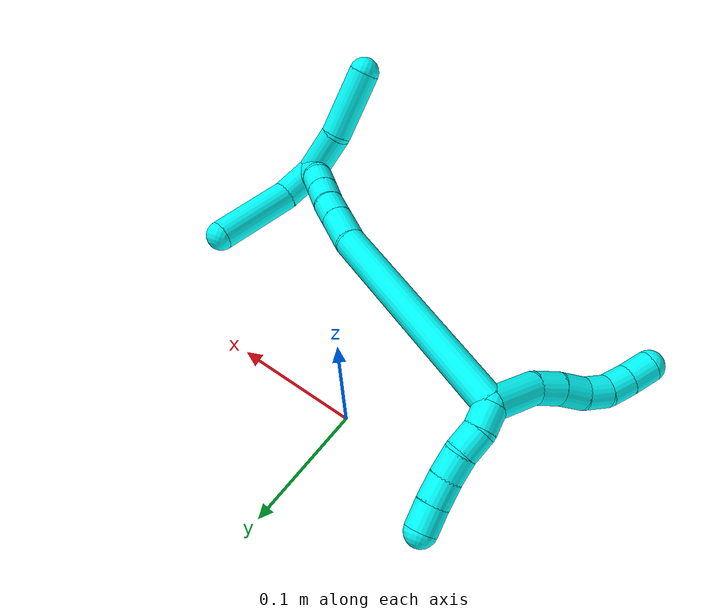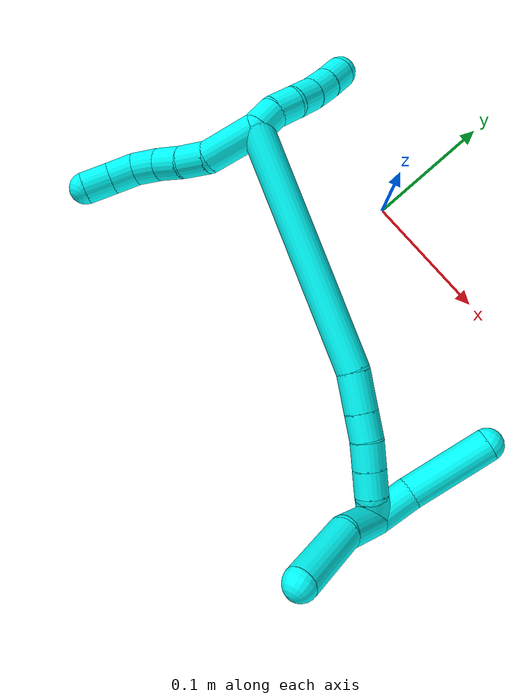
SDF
<sdf version="1.7">
 <world name="default">
  <model name="3">
   <static>0</static>
   <link name="3">
    <collision name="collision-cylinder-e_1_2_8">
     <pose>-0.014561 -0.009411 0.012507 0.645092 -0.749287 -0.261341</pose>
     <geometry><cylinder><radius>0.0125</radius><length>0.042755</length></cylinder></geometry>
     <surface>
      <friction><ode><mu>1.16</mu><mu2>1.16</mu2><slip1>0</slip1><slip2>0</slip2></ode></friction>
      <contact><ode><kp>1e+06</kp><kd>1</kd><max_vel>0</max_vel><min_depth>0.001</min_depth></ode></contact>
     </surface>
    </collision>
    <visual name="visual-cylinder-e_1_2_8">
     <pose>-0.014561 -0.009411 0.012507 0.645092 -0.749287 -0.261341</pose>
     <geometry><cylinder><radius>0.0125</radius><length>0.042755</length></cylinder></geometry>
     <material><ambient>0.003922 1 0.996078 1</ambient></material>
    </visual>
    <collision name="collision-cylinder-e_2_8_9">
     <pose>-0.039192 -0.022304 0.028936 0.725922 -1.09066 -0.452929</pose>
     <geometry><cylinder><radius>0.0125</radius><length>0.022709</length></cylinder></geometry>
     <surface>
      <friction><ode><mu>1.16</mu><mu2>1.16</mu2><slip1>0</slip1><slip2>0</slip2></ode></friction>
      <contact><ode><kp>1e+06</kp><kd>1</kd><max_vel>0</max_vel><min_depth>0.001</min_depth></ode></contact>
     </surface>
    </collision>
    <visual name="visual-cylinder-e_2_8_9">
     <pose>-0.039192 -0.022304 0.028936 0.725922 -1.09066 -0.452929</pose>
     <geometry><cylinder><radius>0.0125</radius><length>0.022709</length></cylinder></geometry>
     <material><ambient>0.003922 1 0.996078 1</ambient></material>
    </visual>
    <collision name="collision-cylinder-e_3_9_10">
     <pose>-0.05949 -0.029193 0.035192 0.970373 -1.18697 -0.683436</pose>
     <geometry><cylinder><radius>0.0125</radius><length>0.02206</length></cylinder></geometry>
     <surface>
      <friction><ode><mu>1.16</mu><mu2>1.16</mu2><slip1>0</slip1><slip2>0</slip2></ode></friction>
      <contact><ode><kp>1e+06</kp><kd>1</kd><max_vel>0</max_vel><min_depth>0.001</min_depth></ode></contact>
     </surface>
    </collision>
    <visual name="visual-cylinder-e_3_9_10">
     <pose>-0.05949 -0.029193 0.035192 0.970373 -1.18697 -0.683436</pose>
     <geometry><cylinder><radius>0.0125</radius><length>0.02206</length></cylinder></geometry>
     <material><ambient>0.003922 1 0.996078 1</ambient></material>
    </visual>
    <collision name="collision-cylinder-e_4_10_11">
     <pose>-0.078495 -0.034811 0.042131 0.447297 -1.04372 -0.26011</pose>
     <geometry><cylinder><radius>0.0125</radius><length>0.020311</length></cylinder></geometry>
     <surface>
      <friction><ode><mu>1.16</mu><mu2>1.16</mu2><slip1>0</slip1><slip2>0</slip2></ode></friction>
      <contact><ode><kp>1e+06</kp><kd>1</kd><max_vel>0</max_vel><min_depth>0.001</min_depth></ode></contact>
     </surface>
    </collision>
    <visual name="visual-cylinder-e_4_10_11">
     <pose>-0.078495 -0.034811 0.042131 0.447297 -1.04372 -0.26011</pose>
     <geometry><cylinder><radius>0.0125</radius><length>0.020311</length></cylinder></geometry>
     <material><ambient>0.003922 1 0.996078 1</ambient></material>
    </visual>
    <collision name="collision-cylinder-e_5_11_12">
     <pose>-0.094052 -0.038672 0.054045 0.22224 -0.735543 -0.085931</pose>
     <geometry><cylinder><radius>0.0125</radius><length>0.020209</length></cylinder></geometry>
     <surface>
      <friction><ode><mu>1.16</mu><mu2>1.16</mu2><slip1>0</slip1><slip2>0</slip2></ode></friction>
      <contact><ode><kp>1e+06</kp><kd>1</kd><max_vel>0</max_vel><min_depth>0.001</min_depth></ode></contact>
     </surface>
    </collision>
    <visual name="visual-cylinder-e_5_11_12">
     <pose>-0.094052 -0.038672 0.054045 0.22224 -0.735543 -0.085931</pose>
     <geometry><cylinder><radius>0.0125</radius><length>0.020209</length></cylinder></geometry>
     <material><ambient>0.003922 1 0.996078 1</ambient></material>
    </visual>
    <collision name="collision-cylinder-e_6_12_6">
     <pose>-0.10766 -0.041332 0.06989 0.117614 -0.671259 -0.041069</pose>
     <geometry><cylinder><radius>0.0125</radius><length>0.021956</length></cylinder></geometry>
     <surface>
      <friction><ode><mu>1.16</mu><mu2>1.16</mu2><slip1>0</slip1><slip2>0</slip2></ode></friction>
      <contact><ode><kp>1e+06</kp><kd>1</kd><max_vel>0</max_vel><min_depth>0.001</min_depth></ode></contact>
     </surface>
    </collision>
    <visual name="visual-cylinder-e_6_12_6">
     <pose>-0.10766 -0.041332 0.06989 0.117614 -0.671259 -0.041069</pose>
     <geometry><cylinder><radius>0.0125</radius><length>0.021956</length></cylinder></geometry>
     <material><ambient>0.003922 1 0.996078 1</ambient></material>
    </visual>
    <collision name="collision-cylinder-e_1_2_13">
     <pose>0.000794 0.000596 -0.009951 -3.08173 0.079448 -1.85035</pose>
     <geometry><cylinder><radius>0.0125</radius><length>0.02</length></cylinder></geometry>
     <surface>
      <friction><ode><mu>1.16</mu><mu2>1.16</mu2><slip1>0</slip1><slip2>0</slip2></ode></friction>
      <contact><ode><kp>1e+06</kp><kd>1</kd><max_vel>0</max_vel><min_depth>0.001</min_depth></ode></contact>
     </surface>
    </collision>
    <visual name="visual-cylinder-e_1_2_13">
     <pose>0.000794 0.000596 -0.009951 -3.08173 0.079448 -1.85035</pose>
     <geometry><cylinder><radius>0.0125</radius><length>0.02</length></cylinder></geometry>
     <material><ambient>0.003922 1 0.996078 1</ambient></material>
    </visual>
    <collision name="collision-cylinder-e_2_13_14">
     <pose>0.004767 0.000102 -0.029319 3.02626 0.323578 2.46166</pose>
     <geometry><cylinder><radius>0.0125</radius><length>0.02</length></cylinder></geometry>
     <surface>
      <friction><ode><mu>1.16</mu><mu2>1.16</mu2><slip1>0</slip1><slip2>0</slip2></ode></friction>
      <contact><ode><kp>1e+06</kp><kd>1</kd><max_vel>0</max_vel><min_depth>0.001</min_depth></ode></contact>
     </surface>
    </collision>
    <visual name="visual-cylinder-e_2_13_14">
     <pose>0.004767 0.000102 -0.029319 3.02626 0.323578 2.46166</pose>
     <geometry><cylinder><radius>0.0125</radius><length>0.02</length></cylinder></geometry>
     <material><ambient>0.003922 1 0.996078 1</ambient></material>
    </visual>
    <collision name="collision-cylinder-e_3_14_15">
     <pose>0.009224 -0.003564 -0.048315 2.87899 0.128058 0.903974</pose>
     <geometry><cylinder><radius>0.0125</radius><length>0.02</length></cylinder></geometry>
     <surface>
      <friction><ode><mu>1.16</mu><mu2>1.16</mu2><slip1>0</slip1><slip2>0</slip2></ode></friction>
      <contact><ode><kp>1e+06</kp><kd>1</kd><max_vel>0</max_vel><min_depth>0.001</min_depth></ode></contact>
     </surface>
    </collision>
    <visual name="visual-cylinder-e_3_14_15">
     <pose>0.009224 -0.003564 -0.048315 2.87899 0.128058 0.903974</pose>
     <geometry><cylinder><radius>0.0125</radius><length>0.02</length></cylinder></geometry>
     <material><ambient>0.003922 1 0.996078 1</ambient></material>
    </visual>
    <collision name="collision-cylinder-e_4_15_16">
     <pose>0.011246 -0.007825 -0.067722 2.97164 0.074553 0.825331</pose>
     <geometry><cylinder><radius>0.0125</radius><length>0.02</length></cylinder></geometry>
     <surface>
      <friction><ode><mu>1.16</mu><mu2>1.16</mu2><slip1>0</slip1><slip2>0</slip2></ode></friction>
      <contact><ode><kp>1e+06</kp><kd>1</kd><max_vel>0</max_vel><min_depth>0.001</min_depth></ode></contact>
     </surface>
    </collision>
    <visual name="visual-cylinder-e_4_15_16">
     <pose>0.011246 -0.007825 -0.067722 2.97164 0.074553 0.825331</pose>
     <geometry><cylinder><radius>0.0125</radius><length>0.02</length></cylinder></geometry>
     <material><ambient>0.003922 1 0.996078 1</ambient></material>
    </visual>
    <collision name="collision-cylinder-e_5_16_5">
     <pose>0.012237 -0.010894 -0.087452 3.00296 0.024637 0.351231</pose>
     <geometry><cylinder><radius>0.0125</radius><length>0.02</length></cylinder></geometry>
     <surface>
      <friction><ode><mu>1.16</mu><mu2>1.16</mu2><slip1>0</slip1><slip2>0</slip2></ode></friction>
      <contact><ode><kp>1e+06</kp><kd>1</kd><max_vel>0</max_vel><min_depth>0.001</min_depth></ode></contact>
     </surface>
    </collision>
    <visual name="visual-cylinder-e_5_16_5">
     <pose>0.012237 -0.010894 -0.087452 3.00296 0.024637 0.351231</pose>
     <geometry><cylinder><radius>0.0125</radius><length>0.02</length></cylinder></geometry>
     <material><ambient>0.003922 1 0.996078 1</ambient></material>
    </visual>
    <collision name="collision-cylinder-e_1_2_17">
     <pose>0.064008 -0.05308 0.044708 0.870802 0.745004 0.359603</pose>
     <geometry><cylinder><radius>0.0125</radius><length>0.18882</length></cylinder></geometry>
     <surface>
      <friction><ode><mu>1.16</mu><mu2>1.16</mu2><slip1>0</slip1><slip2>0</slip2></ode></friction>
      <contact><ode><kp>1e+06</kp><kd>1</kd><max_vel>0</max_vel><min_depth>0.001</min_depth></ode></contact>
     </surface>
    </collision>
    <visual name="visual-cylinder-e_1_2_17">
     <pose>0.064008 -0.05308 0.044708 0.870802 0.745004 0.359603</pose>
     <geometry><cylinder><radius>0.0125</radius><length>0.18882</length></cylinder></geometry>
     <material><ambient>0.003922 1 0.996078 1</ambient></material>
    </visual>
    <collision name="collision-cylinder-e_2_17_18">
     <pose>0.135899 -0.115327 0.097977 0.819608 0.561135 0.249064</pose>
     <geometry><cylinder><radius>0.0125</radius><length>0.029631</length></cylinder></geometry>
     <surface>
      <friction><ode><mu>1.16</mu><mu2>1.16</mu2><slip1>0</slip1><slip2>0</slip2></ode></friction>
      <contact><ode><kp>1e+06</kp><kd>1</kd><max_vel>0</max_vel><min_depth>0.001</min_depth></ode></contact>
     </surface>
    </collision>
    <visual name="visual-cylinder-e_2_17_18">
     <pose>0.135899 -0.115327 0.097977 0.819608 0.561135 0.249064</pose>
     <geometry><cylinder><radius>0.0125</radius><length>0.029631</length></cylinder></geometry>
     <material><ambient>0.003922 1 0.996078 1</ambient></material>
    </visual>
    <collision name="collision-cylinder-e_3_18_19">
     <pose>0.149272 -0.13084 0.112449 0.820821 0.564301 0.250943</pose>
     <geometry><cylinder><radius>0.0125</radius><length>0.020525</length></cylinder></geometry>
     <surface>
      <friction><ode><mu>1.16</mu><mu2>1.16</mu2><slip1>0</slip1><slip2>0</slip2></ode></friction>
      <contact><ode><kp>1e+06</kp><kd>1</kd><max_vel>0</max_vel><min_depth>0.001</min_depth></ode></contact>
     </surface>
    </collision>
    <visual name="visual-cylinder-e_3_18_19">
     <pose>0.149272 -0.13084 0.112449 0.820821 0.564301 0.250943</pose>
     <geometry><cylinder><radius>0.0125</radius><length>0.020525</length></cylinder></geometry>
     <material><ambient>0.003922 1 0.996078 1</ambient></material>
    </visual>
    <collision name="collision-cylinder-e_4_19_20">
     <pose>0.159109 -0.144277 0.124601 0.84913 0.431337 0.197427</pose>
     <geometry><cylinder><radius>0.0125</radius><length>0.020801</length></cylinder></geometry>
     <surface>
      <friction><ode><mu>1.16</mu><mu2>1.16</mu2><slip1>0</slip1><slip2>0</slip2></ode></friction>
      <contact><ode><kp>1e+06</kp><kd>1</kd><max_vel>0</max_vel><min_depth>0.001</min_depth></ode></contact>
     </surface>
    </collision>
    <visual name="visual-cylinder-e_4_19_20">
     <pose>0.159109 -0.144277 0.124601 0.84913 0.431337 0.197427</pose>
     <geometry><cylinder><radius>0.0125</radius><length>0.020801</length></cylinder></geometry>
     <material><ambient>0.003922 1 0.996078 1</ambient></material>
    </visual>
    <collision name="collision-cylinder-e_5_20_21">
     <pose>0.167658 -0.158232 0.136874 0.849733 0.431022 0.197436</pose>
     <geometry><cylinder><radius>0.0125</radius><length>0.020112</length></cylinder></geometry>
     <surface>
      <friction><ode><mu>1.16</mu><mu2>1.16</mu2><slip1>0</slip1><slip2>0</slip2></ode></friction>
      <contact><ode><kp>1e+06</kp><kd>1</kd><max_vel>0</max_vel><min_depth>0.001</min_depth></ode></contact>
     </surface>
    </collision>
    <visual name="visual-cylinder-e_5_20_21">
     <pose>0.167658 -0.158232 0.136874 0.849733 0.431022 0.197436</pose>
     <geometry><cylinder><radius>0.0125</radius><length>0.020112</length></cylinder></geometry>
     <material><ambient>0.003922 1 0.996078 1</ambient></material>
    </visual>
    <collision name="collision-cylinder-e_6_21_1">
     <pose>0.174946 -0.174017 0.146367 1.20078 0.311935 0.214507</pose>
     <geometry><cylinder><radius>0.0125</radius><length>0.020112</length></cylinder></geometry>
     <surface>
      <friction><ode><mu>1.16</mu><mu2>1.16</mu2><slip1>0</slip1><slip2>0</slip2></ode></friction>
      <contact><ode><kp>1e+06</kp><kd>1</kd><max_vel>0</max_vel><min_depth>0.001</min_depth></ode></contact>
     </surface>
    </collision>
    <visual name="visual-cylinder-e_6_21_1">
     <pose>0.174946 -0.174017 0.146367 1.20078 0.311935 0.214507</pose>
     <geometry><cylinder><radius>0.0125</radius><length>0.020112</length></cylinder></geometry>
     <material><ambient>0.003922 1 0.996078 1</ambient></material>
    </visual>
    <collision name="collision-cylinder-e_1_1_22">
     <pose>0.184473 -0.182294 0.13516 -3.09758 0.413393 -2.93245</pose>
     <geometry><cylinder><radius>0.0125</radius><length>0.032065</length></cylinder></geometry>
     <surface>
      <friction><ode><mu>1.16</mu><mu2>1.16</mu2><slip1>0</slip1><slip2>0</slip2></ode></friction>
      <contact><ode><kp>1e+06</kp><kd>1</kd><max_vel>0</max_vel><min_depth>0.001</min_depth></ode></contact>
     </surface>
    </collision>
    <visual name="visual-cylinder-e_1_1_22">
     <pose>0.184473 -0.182294 0.13516 -3.09758 0.413393 -2.93245</pose>
     <geometry><cylinder><radius>0.0125</radius><length>0.032065</length></cylinder></geometry>
     <material><ambient>0.003922 1 0.996078 1</ambient></material>
    </visual>
    <collision name="collision-cylinder-e_2_22_4">
     <pose>0.208253 -0.173829 0.09235 -2.87057 0.535749 -2.21947</pose>
     <geometry><cylinder><radius>0.0125</radius><length>0.067935</length></cylinder></geometry>
     <surface>
      <friction><ode><mu>1.16</mu><mu2>1.16</mu2><slip1>0</slip1><slip2>0</slip2></ode></friction>
      <contact><ode><kp>1e+06</kp><kd>1</kd><max_vel>0</max_vel><min_depth>0.001</min_depth></ode></contact>
     </surface>
    </collision>
    <visual name="visual-cylinder-e_2_22_4">
     <pose>0.208253 -0.173829 0.09235 -2.87057 0.535749 -2.21947</pose>
     <geometry><cylinder><radius>0.0125</radius><length>0.067935</length></cylinder></geometry>
     <material><ambient>0.003922 1 0.996078 1</ambient></material>
    </visual>
    <collision name="collision-cylinder-e_1_1_23">
     <pose>0.174705 -0.168688 0.165163 -0.748798 -0.157604 0.062036</pose>
     <geometry><cylinder><radius>0.0125</radius><length>0.042398</length></cylinder></geometry>
     <surface>
      <friction><ode><mu>1.16</mu><mu2>1.16</mu2><slip1>0</slip1><slip2>0</slip2></ode></friction>
      <contact><ode><kp>1e+06</kp><kd>1</kd><max_vel>0</max_vel><min_depth>0.001</min_depth></ode></contact>
     </surface>
    </collision>
    <visual name="visual-cylinder-e_1_1_23">
     <pose>0.174705 -0.168688 0.165163 -0.748798 -0.157604 0.062036</pose>
     <geometry><cylinder><radius>0.0125</radius><length>0.042398</length></cylinder></geometry>
     <material><ambient>0.003922 1 0.996078 1</ambient></material>
    </visual>
    <collision name="collision-cylinder-e_2_23_3">
     <pose>0.170858 -0.141781 0.206366 -0.45498 -0.018025 0.004173</pose>
     <geometry><cylinder><radius>0.0125</radius><length>0.057602</length></cylinder></geometry>
     <surface>
      <friction><ode><mu>1.16</mu><mu2>1.16</mu2><slip1>0</slip1><slip2>0</slip2></ode></friction>
      <contact><ode><kp>1e+06</kp><kd>1</kd><max_vel>0</max_vel><min_depth>0.001</min_depth></ode></contact>
     </surface>
    </collision>
    <visual name="visual-cylinder-e_2_23_3">
     <pose>0.170858 -0.141781 0.206366 -0.45498 -0.018025 0.004173</pose>
     <geometry><cylinder><radius>0.0125</radius><length>0.057602</length></cylinder></geometry>
     <material><ambient>0.003922 1 0.996078 1</ambient></material>
    </visual>
    <collision name="collision-sphere-3">
     <pose>0.170339 -0.129126 0.232233 0 -0 0</pose>
     <geometry><sphere><radius>0.0125</radius></sphere></geometry>
     <surface>
      <friction><ode><mu>1.16</mu><mu2>1.16</mu2><slip1>0</slip1><slip2>0</slip2></ode></friction>
      <contact><ode><kp>1e+06</kp><kd>1</kd><max_vel>0</max_vel><min_depth>0.001</min_depth></ode></contact>
     </surface>
    </collision>
    <visual name="visual-sphere-3">
     <pose>0.170339 -0.129126 0.232233 0 -0 0</pose>
     <geometry><sphere><radius>0.0125</radius></sphere></geometry>
     <material><ambient>0.003922 1 0.996078 1</ambient></material>
    </visual>
    <collision name="collision-sphere-23">
     <pose>0.171378 -0.154435 0.180499 0 -0 0</pose>
     <geometry><sphere><radius>0.0125</radius></sphere></geometry>
     <surface>
      <friction><ode><mu>1.16</mu><mu2>1.16</mu2><slip1>0</slip1><slip2>0</slip2></ode></friction>
      <contact><ode><kp>1e+06</kp><kd>1</kd><max_vel>0</max_vel><min_depth>0.001</min_depth></ode></contact>
     </surface>
    </collision>
    <visual name="visual-sphere-23">
     <pose>0.171378 -0.154435 0.180499 0 -0 0</pose>
     <geometry><sphere><radius>0.0125</radius></sphere></geometry>
     <material><ambient>0.003922 1 0.996078 1</ambient></material>
    </visual>
    <collision name="collision-sphere-4">
     <pose>0.225593 -0.166009 0.064208 0 -0 0</pose>
     <geometry><sphere><radius>0.0125</radius></sphere></geometry>
     <surface>
      <friction><ode><mu>1.16</mu><mu2>1.16</mu2><slip1>0</slip1><slip2>0</slip2></ode></friction>
      <contact><ode><kp>1e+06</kp><kd>1</kd><max_vel>0</max_vel><min_depth>0.001</min_depth></ode></contact>
     </surface>
    </collision>
    <visual name="visual-sphere-4">
     <pose>0.225593 -0.166009 0.064208 0 -0 0</pose>
     <geometry><sphere><radius>0.0125</radius></sphere></geometry>
     <material><ambient>0.003922 1 0.996078 1</ambient></material>
    </visual>
    <collision name="collision-sphere-22">
     <pose>0.190913 -0.181648 0.120492 0 -0 0</pose>
     <geometry><sphere><radius>0.0125</radius></sphere></geometry>
     <surface>
      <friction><ode><mu>1.16</mu><mu2>1.16</mu2><slip1>0</slip1><slip2>0</slip2></ode></friction>
      <contact><ode><kp>1e+06</kp><kd>1</kd><max_vel>0</max_vel><min_depth>0.001</min_depth></ode></contact>
     </surface>
    </collision>
    <visual name="visual-sphere-22">
     <pose>0.190913 -0.181648 0.120492 0 -0 0</pose>
     <geometry><sphere><radius>0.0125</radius></sphere></geometry>
     <material><ambient>0.003922 1 0.996078 1</ambient></material>
    </visual>
    <collision name="collision-sphere-1">
     <pose>0.178032 -0.18294 0.149828 0 -0 0</pose>
     <geometry><sphere><radius>0.0125</radius></sphere></geometry>
     <surface>
      <friction><ode><mu>1.16</mu><mu2>1.16</mu2><slip1>0</slip1><slip2>0</slip2></ode></friction>
      <contact><ode><kp>1e+06</kp><kd>1</kd><max_vel>0</max_vel><min_depth>0.001</min_depth></ode></contact>
     </surface>
    </collision>
    <visual name="visual-sphere-1">
     <pose>0.178032 -0.18294 0.149828 0 -0 0</pose>
     <geometry><sphere><radius>0.0125</radius></sphere></geometry>
     <material><ambient>0.003922 1 0.996078 1</ambient></material>
    </visual>
    <collision name="collision-sphere-21">
     <pose>0.17186 -0.165094 0.142905 0 -0 0</pose>
     <geometry><sphere><radius>0.0125</radius></sphere></geometry>
     <surface>
      <friction><ode><mu>1.16</mu><mu2>1.16</mu2><slip1>0</slip1><slip2>0</slip2></ode></friction>
      <contact><ode><kp>1e+06</kp><kd>1</kd><max_vel>0</max_vel><min_depth>0.001</min_depth></ode></contact>
     </surface>
    </collision>
    <visual name="visual-sphere-21">
     <pose>0.17186 -0.165094 0.142905 0 -0 0</pose>
     <geometry><sphere><radius>0.0125</radius></sphere></geometry>
     <material><ambient>0.003922 1 0.996078 1</ambient></material>
    </visual>
    <collision name="collision-sphere-12">
     <pose>-0.100832 -0.040323 0.061353 0 -0 0</pose>
     <geometry><sphere><radius>0.0125</radius></sphere></geometry>
     <surface>
      <friction><ode><mu>1.16</mu><mu2>1.16</mu2><slip1>0</slip1><slip2>0</slip2></ode></friction>
      <contact><ode><kp>1e+06</kp><kd>1</kd><max_vel>0</max_vel><min_depth>0.001</min_depth></ode></contact>
     </surface>
    </collision>
    <visual name="visual-sphere-12">
     <pose>-0.100832 -0.040323 0.061353 0 -0 0</pose>
     <geometry><sphere><radius>0.0125</radius></sphere></geometry>
     <material><ambient>0.003922 1 0.996078 1</ambient></material>
    </visual>
    <collision name="collision-sphere-11">
     <pose>-0.087272 -0.03702 0.046737 0 -0 0</pose>
     <geometry><sphere><radius>0.0125</radius></sphere></geometry>
     <surface>
      <friction><ode><mu>1.16</mu><mu2>1.16</mu2><slip1>0</slip1><slip2>0</slip2></ode></friction>
      <contact><ode><kp>1e+06</kp><kd>1</kd><max_vel>0</max_vel><min_depth>0.001</min_depth></ode></contact>
     </surface>
    </collision>
    <visual name="visual-sphere-11">
     <pose>-0.087272 -0.03702 0.046737 0 -0 0</pose>
     <geometry><sphere><radius>0.0125</radius></sphere></geometry>
     <material><ambient>0.003922 1 0.996078 1</ambient></material>
    </visual>
    <collision name="collision-sphere-10">
     <pose>-0.069717 -0.032601 0.037525 0 -0 0</pose>
     <geometry><sphere><radius>0.0125</radius></sphere></geometry>
     <surface>
      <friction><ode><mu>1.16</mu><mu2>1.16</mu2><slip1>0</slip1><slip2>0</slip2></ode></friction>
      <contact><ode><kp>1e+06</kp><kd>1</kd><max_vel>0</max_vel><min_depth>0.001</min_depth></ode></contact>
     </surface>
    </collision>
    <visual name="visual-sphere-10">
     <pose>-0.069717 -0.032601 0.037525 0 -0 0</pose>
     <geometry><sphere><radius>0.0125</radius></sphere></geometry>
     <material><ambient>0.003922 1 0.996078 1</ambient></material>
    </visual>
    <collision name="collision-sphere-9">
     <pose>-0.049262 -0.025785 0.032858 0 -0 0</pose>
     <geometry><sphere><radius>0.0125</radius></sphere></geometry>
     <surface>
      <friction><ode><mu>1.16</mu><mu2>1.16</mu2><slip1>0</slip1><slip2>0</slip2></ode></friction>
      <contact><ode><kp>1e+06</kp><kd>1</kd><max_vel>0</max_vel><min_depth>0.001</min_depth></ode></contact>
     </surface>
    </collision>
    <visual name="visual-sphere-9">
     <pose>-0.049262 -0.025785 0.032858 0 -0 0</pose>
     <geometry><sphere><radius>0.0125</radius></sphere></geometry>
     <material><ambient>0.003922 1 0.996078 1</ambient></material>
    </visual>
    <collision name="collision-sphere-2">
     <geometry><sphere><radius>0.0125</radius></sphere></geometry>
     <surface>
      <friction><ode><mu>1.16</mu><mu2>1.16</mu2><slip1>0</slip1><slip2>0</slip2></ode></friction>
      <contact><ode><kp>1e+06</kp><kd>1</kd><max_vel>0</max_vel><min_depth>0.001</min_depth></ode></contact>
     </surface>
    </collision>
    <visual name="visual-sphere-2">
     <geometry><sphere><radius>0.0125</radius></sphere></geometry>
     <material><ambient>0.003922 1 0.996078 1</ambient></material>
    </visual>
    <collision name="collision-sphere-19">
     <pose>0.15476 -0.137185 0.118359 0 -0 0</pose>
     <geometry><sphere><radius>0.0125</radius></sphere></geometry>
     <surface>
      <friction><ode><mu>1.16</mu><mu2>1.16</mu2><slip1>0</slip1><slip2>0</slip2></ode></friction>
      <contact><ode><kp>1e+06</kp><kd>1</kd><max_vel>0</max_vel><min_depth>0.001</min_depth></ode></contact>
     </surface>
    </collision>
    <visual name="visual-sphere-19">
     <pose>0.15476 -0.137185 0.118359 0 -0 0</pose>
     <geometry><sphere><radius>0.0125</radius></sphere></geometry>
     <material><ambient>0.003922 1 0.996078 1</ambient></material>
    </visual>
    <collision name="collision-sphere-8">
     <pose>-0.029121 -0.018822 0.025013 0 -0 0</pose>
     <geometry><sphere><radius>0.0125</radius></sphere></geometry>
     <surface>
      <friction><ode><mu>1.16</mu><mu2>1.16</mu2><slip1>0</slip1><slip2>0</slip2></ode></friction>
      <contact><ode><kp>1e+06</kp><kd>1</kd><max_vel>0</max_vel><min_depth>0.001</min_depth></ode></contact>
     </surface>
    </collision>
    <visual name="visual-sphere-8">
     <pose>-0.029121 -0.018822 0.025013 0 -0 0</pose>
     <geometry><sphere><radius>0.0125</radius></sphere></geometry>
     <material><ambient>0.003922 1 0.996078 1</ambient></material>
    </visual>
    <collision name="collision-sphere-6">
     <pose>-0.114488 -0.04234 0.078426 0 -0 0</pose>
     <geometry><sphere><radius>0.0125</radius></sphere></geometry>
     <surface>
      <friction><ode><mu>1.16</mu><mu2>1.16</mu2><slip1>0</slip1><slip2>0</slip2></ode></friction>
      <contact><ode><kp>1e+06</kp><kd>1</kd><max_vel>0</max_vel><min_depth>0.001</min_depth></ode></contact>
     </surface>
    </collision>
    <visual name="visual-sphere-6">
     <pose>-0.114488 -0.04234 0.078426 0 -0 0</pose>
     <geometry><sphere><radius>0.0125</radius></sphere></geometry>
     <material><ambient>0.003922 1 0.996078 1</ambient></material>
    </visual>
    <collision name="collision-sphere-13">
     <pose>0.001587 0.001193 -0.019901 0 -0 0</pose>
     <geometry><sphere><radius>0.0125</radius></sphere></geometry>
     <surface>
      <friction><ode><mu>1.16</mu><mu2>1.16</mu2><slip1>0</slip1><slip2>0</slip2></ode></friction>
      <contact><ode><kp>1e+06</kp><kd>1</kd><max_vel>0</max_vel><min_depth>0.001</min_depth></ode></contact>
     </surface>
    </collision>
    <visual name="visual-sphere-13">
     <pose>0.001587 0.001193 -0.019901 0 -0 0</pose>
     <geometry><sphere><radius>0.0125</radius></sphere></geometry>
     <material><ambient>0.003922 1 0.996078 1</ambient></material>
    </visual>
    <collision name="collision-sphere-14">
     <pose>0.007947 -0.000989 -0.038737 0 -0 0</pose>
     <geometry><sphere><radius>0.0125</radius></sphere></geometry>
     <surface>
      <friction><ode><mu>1.16</mu><mu2>1.16</mu2><slip1>0</slip1><slip2>0</slip2></ode></friction>
      <contact><ode><kp>1e+06</kp><kd>1</kd><max_vel>0</max_vel><min_depth>0.001</min_depth></ode></contact>
     </surface>
    </collision>
    <visual name="visual-sphere-14">
     <pose>0.007947 -0.000989 -0.038737 0 -0 0</pose>
     <geometry><sphere><radius>0.0125</radius></sphere></geometry>
     <material><ambient>0.003922 1 0.996078 1</ambient></material>
    </visual>
    <collision name="collision-sphere-15">
     <pose>0.010501 -0.006139 -0.057894 0 -0 0</pose>
     <geometry><sphere><radius>0.0125</radius></sphere></geometry>
     <surface>
      <friction><ode><mu>1.16</mu><mu2>1.16</mu2><slip1>0</slip1><slip2>0</slip2></ode></friction>
      <contact><ode><kp>1e+06</kp><kd>1</kd><max_vel>0</max_vel><min_depth>0.001</min_depth></ode></contact>
     </surface>
    </collision>
    <visual name="visual-sphere-15">
     <pose>0.010501 -0.006139 -0.057894 0 -0 0</pose>
     <geometry><sphere><radius>0.0125</radius></sphere></geometry>
     <material><ambient>0.003922 1 0.996078 1</ambient></material>
    </visual>
    <collision name="collision-sphere-16">
     <pose>0.01199 -0.009512 -0.077551 0 -0 0</pose>
     <geometry><sphere><radius>0.0125</radius></sphere></geometry>
     <surface>
      <friction><ode><mu>1.16</mu><mu2>1.16</mu2><slip1>0</slip1><slip2>0</slip2></ode></friction>
      <contact><ode><kp>1e+06</kp><kd>1</kd><max_vel>0</max_vel><min_depth>0.001</min_depth></ode></contact>
     </surface>
    </collision>
    <visual name="visual-sphere-16">
     <pose>0.01199 -0.009512 -0.077551 0 -0 0</pose>
     <geometry><sphere><radius>0.0125</radius></sphere></geometry>
     <material><ambient>0.003922 1 0.996078 1</ambient></material>
    </visual>
    <collision name="collision-sphere-5">
     <pose>0.012483 -0.012275 -0.097353 0 -0 0</pose>
     <geometry><sphere><radius>0.0125</radius></sphere></geometry>
     <surface>
      <friction><ode><mu>1.16</mu><mu2>1.16</mu2><slip1>0</slip1><slip2>0</slip2></ode></friction>
      <contact><ode><kp>1e+06</kp><kd>1</kd><max_vel>0</max_vel><min_depth>0.001</min_depth></ode></contact>
     </surface>
    </collision>
    <visual name="visual-sphere-5">
     <pose>0.012483 -0.012275 -0.097353 0 -0 0</pose>
     <geometry><sphere><radius>0.0125</radius></sphere></geometry>
     <material><ambient>0.003922 1 0.996078 1</ambient></material>
    </visual>
    <collision name="collision-sphere-17">
     <pose>0.128015 -0.10616 0.089416 0 -0 0</pose>
     <geometry><sphere><radius>0.0125</radius></sphere></geometry>
     <surface>
      <friction><ode><mu>1.16</mu><mu2>1.16</mu2><slip1>0</slip1><slip2>0</slip2></ode></friction>
      <contact><ode><kp>1e+06</kp><kd>1</kd><max_vel>0</max_vel><min_depth>0.001</min_depth></ode></contact>
     </surface>
    </collision>
    <visual name="visual-sphere-17">
     <pose>0.128015 -0.10616 0.089416 0 -0 0</pose>
     <geometry><sphere><radius>0.0125</radius></sphere></geometry>
     <material><ambient>0.003922 1 0.996078 1</ambient></material>
    </visual>
    <collision name="collision-sphere-18">
     <pose>0.143783 -0.124495 0.106538 0 -0 0</pose>
     <geometry><sphere><radius>0.0125</radius></sphere></geometry>
     <surface>
      <friction><ode><mu>1.16</mu><mu2>1.16</mu2><slip1>0</slip1><slip2>0</slip2></ode></friction>
      <contact><ode><kp>1e+06</kp><kd>1</kd><max_vel>0</max_vel><min_depth>0.001</min_depth></ode></contact>
     </surface>
    </collision>
    <visual name="visual-sphere-18">
     <pose>0.143783 -0.124495 0.106538 0 -0 0</pose>
     <geometry><sphere><radius>0.0125</radius></sphere></geometry>
     <material><ambient>0.003922 1 0.996078 1</ambient></material>
    </visual>
    <collision name="collision-sphere-20">
     <pose>0.163457 -0.15137 0.130842 0 -0 0</pose>
     <geometry><sphere><radius>0.0125</radius></sphere></geometry>
     <surface>
      <friction><ode><mu>1.16</mu><mu2>1.16</mu2><slip1>0</slip1><slip2>0</slip2></ode></friction>
      <contact><ode><kp>1e+06</kp><kd>1</kd><max_vel>0</max_vel><min_depth>0.001</min_depth></ode></contact>
     </surface>
    </collision>
    <visual name="visual-sphere-20">
     <pose>0.163457 -0.15137 0.130842 0 -0 0</pose>
     <geometry><sphere><radius>0.0125</radius></sphere></geometry>
     <material><ambient>0.003922 1 0.996078 1</ambient></material>
    </visual>
    <inertial>
     <pose>0.07836 -0.084216 0.069379 0 -0 0</pose>
     <mass>0.75</mass>
     <inertia>
      <ixx>0.000556</ixx>
      <ixy>0</ixy>
      <ixz>0</ixz>
      <iyy>0.000628</iyy>
      <iyz>0</iyz>
      <izz>-7.1e-05</izz>
     </inertia>
    </inertial>
   </link>
   <pose>-0.098422 -0.043765 0.061563 1.16591 -0.340063 0.373793</pose>
  </model>
 </world>
</sdf>
